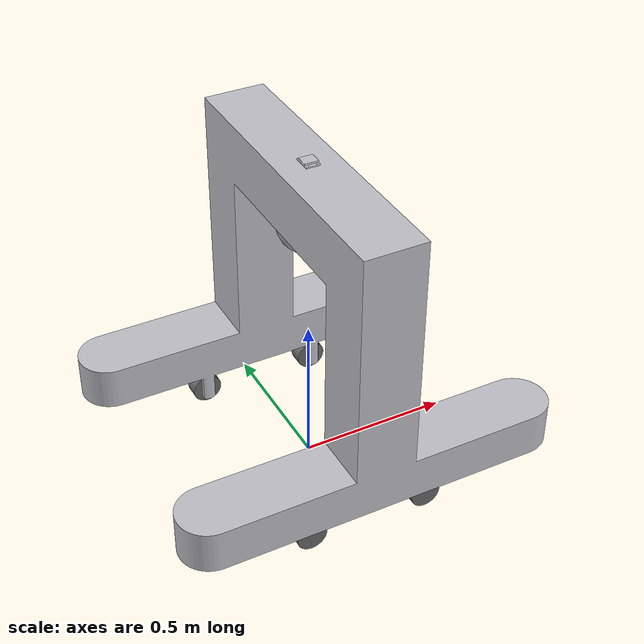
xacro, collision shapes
<?xml version="1.0" ?>
<robot name="robot" xmlns:xacro="http://www.ros.org/wiki/xacro">

<xacro:property name="PI" value="3.1415926535897931" />

<xacro:property name="wheel_radius" value="0.050" />
<xacro:property name="wheel_width" value="0.0505" />

<material name="light_grey"><color rgba="0.4 0.4 0.4 1.0" /></material>

<xacro:include filename="$(find robot_description)/urdf/materials.xacro" />
<xacro:include filename="$(find robot_description)/urdf/robot.trans" />
<xacro:include filename="$(find robot_description)/urdf/robot_mecanum.gazebo" />

<xacro:property name="base_collision_height" value="0.5403669088914017"/>
<xacro:property name="base_mass" value="12.4385441416157"/>
<xacro:property name="base_mass_ixx" value="9.007417"/>
<xacro:property name="base_mass_iyy" value="2.398532"/>
<xacro:property name="base_mass_izz" value="2.911004"/>

<link name="base_link">
  <visual>
    <origin xyz="0 0 0" rpy="0 0 0"/>
    <geometry>
      <mesh filename="package://robot_description/meshes/base_link.stl" scale="0.001 0.001 0.001"/>
    </geometry>
    <material name="silver"/>
  </visual>
  <collision>
    <origin xyz="0 0 0" rpy="0 0 0"/>
    <geometry>
      <mesh filename="package://robot_description/meshes/base_link.stl" scale="0.001 0.001 0.001"/>
    </geometry>
  </collision>
</link>

<joint name="inertial_joint" type="fixed">
  <parent link="base_link"/>
  <child link="main_mass"/>
  <origin xyz="0 0 0" rpy="0 0 0"/>
</joint>

<link name="main_mass" type="fixed">
  <inertial>
    <origin xyz="0 0 0" rpy="0 0 0"/>
    <mass value="${base_mass}"/>
    <inertia
      ixx="${base_mass_ixx}"  ixy="0.000000"  ixz="0.000000"
      iyy="${base_mass_iyy}"  iyz="0.000000"
      izz="${base_mass_izz}"/>
  </inertial>
</link>

<!-- 调用激光雷达 -->
<xacro:include filename="$(find robot_description)/urdf/VLP-16.urdf.xacro"/>
<xacro:VLP-16
  parent="base_link"
  name="velodyne"
  topic="/velodyne_points"
  hz="10"
  samples="880"
  min_range="0.5"
  max_range="130"
  gpu="true"
>
  <origin xyz="0.2 0.0 0.6" rpy="0 0 0" />

</xacro:VLP-16>
<!-- 加载驱动轮模型  -->
<joint name="back_right_wheel_joint" type="continuous">
  <origin xyz="-0.201052 -0.388969 0.064" rpy="0 0 0"/>
  <parent link="base_link"/>
  <child link="back_right_wheel"/>
  <axis xyz="0.0 1.0 0.0"/>
</joint>

<link name="back_right_wheel">
    <visual>
      <origin xyz="0 0 0" rpy="0 0 0" />
      <geometry>
        <mesh filename="package://robot_description/meshes/mecanum_wheel_left.stl" scale="0.001 0.001 0.001"/>
      </geometry>
      <material name="light_grey" />
    </visual>
    <collision>
      <origin xyz="0 0 0" rpy="${PI/2} 0 0"/>
      <geometry>
        <cylinder radius="${wheel_radius}" length="${wheel_width}"/>
      </geometry>
    </collision>
    <inertial>
      <origin xyz="0.0 0.0 0.0" rpy="0 0 0"/>
      <mass value="0.3844"/>
      <!-- Inertia based on cylinder -->
      <inertia
        ixx="0.000324824" ixy="0" ixz="0"
        iyy="0.000480000" iyz="0"
        izz="0.000324824"/>
    </inertial>
</link>

<joint name="back_left_wheel_joint" type="continuous">
  <origin xyz="-0.201052 0.391031 0.064" rpy="0 0 0"/>
  <parent link="base_link"/>
  <child link="back_left_wheel"/>
  <axis xyz="0.0 1.0 0.0"/>
</joint>

<link name="back_left_wheel">
    <visual>
      <origin xyz="0 0 0" rpy="0 0 0" />
      <geometry>
        <mesh filename="package://robot_description/meshes/mecanum_wheel_right.stl" scale="0.001 0.001 0.001"/>
      </geometry>
      <material name="light_grey" />
    </visual>
    <collision>
      <origin xyz="0 0 0" rpy="${PI/2} 0 0"/>
      <geometry>
        <cylinder radius="${wheel_radius}" length="${wheel_width}"/>
      </geometry>
    </collision>
    <inertial>
      <origin xyz="0.0 0.0 0.0" rpy="0 0 0"/>
      <mass value="0.3844"/>
      <!-- Inertia based on cylinder -->
      <inertia
        ixx="0.000324824" ixy="0" ixz="0"
        iyy="0.000480000" iyz="0"
        izz="0.000324824"/>
    </inertial>
</link>

<joint name="front_left_wheel_joint" type="continuous">
  <origin xyz="0.198948 0.391031 0.064" rpy="0 0 0"/>
  <parent link="base_link"/>
  <child link="front_left_wheel"/>
  <axis xyz="0.0 1.0 0.0"/>
</joint>

<link name="front_left_wheel">
    <visual>
      <origin xyz="0 0 0" rpy="0 0 0" />
      <geometry>
        <mesh filename="package://robot_description/meshes/mecanum_wheel_left.stl" scale="0.001 0.001 0.001"/>
      </geometry>
      <material name="light_grey" />
    </visual>
    <collision>
      <origin xyz="0 0 0" rpy="${PI/2} 0 0"/>
      <geometry>
        <cylinder radius="${wheel_radius}" length="${wheel_width}"/>
      </geometry>
    </collision>
    <inertial>
      <origin xyz="0.0 0.0 0.0" rpy="0 0 0"/>
      <mass value="0.3844"/>
      <!-- Inertia based on cylinder -->
      <inertia
        ixx="0.000324824" ixy="0" ixz="0"
        iyy="0.000480000" iyz="0"
        izz="0.000324824"/>
    </inertial>
</link>

<joint name="front_right_wheel_joint" type="continuous">
  <origin xyz="0.198948 -0.388969 0.064" rpy="0 0 0"/>
  <parent link="base_link"/>
  <child link="front_right_wheel"/>
  <axis xyz="0.0 1.0 0.0"/>
</joint>

<link name="front_right_wheel">
    <visual>
      <origin xyz="0 0 0" rpy="0 0 0" />
      <geometry>
        <mesh filename="package://robot_description/meshes/mecanum_wheel_right.stl" scale="0.001 0.001 0.001"/>
      </geometry>
      <material name="light_grey" />
    </visual>
    <collision>
      <origin xyz="0 0 0" rpy="${PI/2} 0 0"/>
      <geometry>
        <cylinder radius="${wheel_radius}" length="${wheel_width}"/>
      </geometry>
    </collision>
    <inertial>
      <origin xyz="0.0 0.0 0.0" rpy="0 0 0"/>
      <mass value="0.3844"/>
      <!-- Inertia based on cylinder -->
      <inertia
        ixx="0.000324824" ixy="0" ixz="0"
        iyy="0.000480000" iyz="0"
        izz="0.000324824"/>
    </inertial>
</link>

<!-- 添加imu连接 -->
<joint name="imu_fixed_joint" type="fixed">
  <origin xyz="0.0 0.0 0.923475" rpy="0 0 0"/>
  <parent link="base_link"/>
  <child link="imu_link"/>
</joint>

<link name="imu_link">
  <inertial>
    <origin xyz="-3.1964619419726226e-05 -3.009551236631383e-17 0.004668359474671813" rpy="0 0 0"/>
    <mass value="0.18887672743007808"/>
    <inertia ixx="4.3e-05" iyy="3.5e-05" izz="7.5e-05" ixy="0.0" iyz="0.0" ixz="0.0"/>
  </inertial>
  <visual>
    <origin xyz="-0.0 -0.0 -0.923475" rpy="0 0 0"/>
    <geometry>
      <mesh filename="package://robot_description/meshes/imu_link.stl" scale="0.001 0.001 0.001"/>
    </geometry>
    <material name="silver"/>
  </visual>
  <collision>
    <origin xyz="-0.0 -0.0 -0.923475" rpy="0 0 0"/>
    <geometry>
      <mesh filename="package://robot_description/meshes/imu_link.stl" scale="0.001 0.001 0.001"/>
    </geometry>
  </collision>
</link>

<link name="gps_link">
  <inertial>
    <mass value="0.1"/>
    <origin xyz="0 0 0" />
    <inertia ixx="0.01" iyy="0.01" izz="0.01" ixy="0.01" ixz="0.01" iyz="0.01"/>
  </inertial>
  <visual>
    <geometry>
      <sphere radius="0.01"/>
    </geometry>
    <material name="silver"/>
  </visual>
  <collision>
    <geometry>
      <sphere radius="0.1"/>
    </geometry>
  </collision>
  <sensor name="gps_sensor" type="gps">
    <update_rate>1.0</update_rate>
    <visualize>true</visualize>
    <gps>
      <position>0 0 0</position>
    </gps>
  </sensor>
</link>

<joint name="gps_link_joint" type="fixed">
  <parent link="base_link" />
  <child link="gps_link" />
  <origin xyz="0.0 0.0 0.9" rpy="0 0 0" />  <!-- 适当设置位置 -->
</joint>

</robot>

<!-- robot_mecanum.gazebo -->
<robot name="robot" xmlns:xacro="http://www.ros.org/wiki/xacro" >

<xacro:property name="body_color" value="Gazebo/Silver" />

<gazebo>

    <plugin name="nexus_ros_force_based_move" filename="libnexus_ros_force_based_move.so">
      <commandTopic>cmd_vel</commandTopic>
      <odometryTopic>odom</odometryTopic>
      <odometryFrame>odom</odometryFrame>
      <odometryRate>25.0</odometryRate>
      <robotBaseFrame>base_link</robotBaseFrame>
      <cmdVelTimeOut>0.25</cmdVelTimeOut>
      <publishOdometryTf>1</publishOdometryTf>
      <yaw_velocity_p_gain>1.0</yaw_velocity_p_gain>
      <x_velocity_p_gain>100.0</x_velocity_p_gain>
      <y_velocity_p_gain>100.0</y_velocity_p_gain>
      <max_x_velocity>0.6</max_x_velocity>
      <max_y_velocity>0.6</max_y_velocity>
      <max_yaw_velocity>0.5</max_yaw_velocity>
    </plugin>
</gazebo>

<gazebo reference="base_link">
  <material>${body_color}</material>
  <mu1>10</mu1>
  <mu2>10</mu2>
  <selfCollide>true</selfCollide>
  <gravity>true</gravity>
  <velocity_decay>
    <linear>0.01</linear>
    <angular>0.005</angular>
  </velocity_decay>
</gazebo>

<gazebo reference="back_right_wheel">
  <material>${body_color}</material>
  <mu1>0.0</mu1>
  <mu2>0.0</mu2>
  <selfCollide>true</selfCollide>
</gazebo>

<gazebo reference="back_left_wheel">
  <material>${body_color}</material>
  <mu1>0.0</mu1>
  <mu2>0.0</mu2>
  <selfCollide>true</selfCollide>
</gazebo>

<gazebo reference="front_left_wheel">
  <material>${body_color}</material>
  <mu1>0.0</mu1>
  <mu2>0.0</mu2>
  <selfCollide>true</selfCollide>
</gazebo>

<gazebo reference="front_right_wheel">
  <material>${body_color}</material>
  <mu1>0.0</mu1>
  <mu2>0.0</mu2>
  <selfCollide>true</selfCollide>
</gazebo>

<gazebo reference="imu_link">
  <sensor name="imu_sensor" type="imu">
    <always_on>true</always_on>
    <update_rate>200</update_rate>  <!-- 数据更新频率（Hz） -->
    <visualize>true</visualize>     <!-- 在 Gazebo 中显示 IMU -->
    <imu>
      <noise>
        <!-- 加速度计噪声模型 -->
        <type>gaussian</type>
        <rate>
          <mean>0.0</mean>
          <stddev>0.001</stddev>  <!-- 标准偏差 -->
        </rate>
        <accel>
          <mean>0.0</mean>
          <stddev>0.01</stddev>
        </accel>
      </noise>
    </imu>
    <plugin name="imu_plugin" filename="libgazebo_ros_imu_sensor.so">
      <topicName>/imu/data</topicName>       <!-- 发布的 ROS 话题 -->
      <bodyName>imu_link</bodyName>          <!-- IMU 的链接名称 -->
      <updateRateHZ>100</updateRateHZ>       <!-- 与传感器更新率一致 -->
      <gaussianNoise>0.001</gaussianNoise>   <!-- 高斯噪声 -->
      <frameName>imu_link</frameName>         <!-- 坐标系名称 -->
      <xyzOffset>0 0 0</xyzOffset>  <!-- x,y,z方向偏移 -->
      <rpyOffset>0 0 0</rpyOffset>
    </plugin>
  </sensor>
  <material>${body_color}</material>
  <mu1>0.2</mu1>
  <mu2>0.2</mu2>
  <selfCollide>true</selfCollide>
</gazebo>

<gazebo>
  <plugin name="gps_controller" filename="libhector_gazebo_ros_gps.so">
    <updateRate>40</updateRate>
    <bodyName>gps_link</bodyName>
    <frameId>base_link</frameId>
    <topicName>navsat/fix</topicName>
    <velocityTopicName>navsat/vel</velocityTopicName>
    <referenceLatitude>$(optenv GAZEBO_WORLD_LAT 49.9)</referenceLatitude>
    <referenceLongitude>$(optenv GAZEBO_WORLD_LON 8.9)</referenceLongitude>
    <referenceHeading>90</referenceHeading>
    <referenceAltitude>0</referenceAltitude>
    <drift>0.0000001 0.000001 0.000001</drift>
  </plugin>
</gazebo>

</robot>

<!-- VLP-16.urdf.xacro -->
<robot xmlns:xacro="http://www.ros.org/wiki/xacro" name="VLP-16">
  <xacro:property name="M_PI" value="3.1415926535897931" />
  <xacro:macro name="VLP-16" params="*origin parent:=base_link name:=velodyne topic:=/velodyne_points hz:=10 lasers:=16 samples:=1875 collision_range:=0.3 min_range:=0.9 max_range:=130.0 noise:=0.008 min_angle:=-${M_PI} max_angle:=${M_PI} gpu:=false">

    <joint name="${name}_base_mount_joint" type="fixed">
      <xacro:insert_block name="origin" />
      <parent link="${parent}"/>
      <child link="${name}_base_link"/>
    </joint>

    <link name="${name}_base_link">
      <inertial>
        <mass value="0.83"/>
        <origin xyz="0 0 0.03585"/>
        <inertia ixx="${(0.83 * (3.0*0.0516*0.0516 + 0.0717*0.0717)) / 12.0}" ixy="0" ixz="0"
          iyy="${(0.83 * (3.0*0.0516*0.0516 + 0.0717*0.0717)) / 12.0}" iyz="0"
          izz="${0.5 * 0.83 * (0.0516*0.0516)}"/>
      </inertial>
      <visual>
        <geometry>
          <mesh filename="package://robot_description/meshes/VLP16/VLP16_base_1.dae" />
        </geometry>
      </visual>
      <visual>
        <geometry>
          <mesh filename="package://robot_description/meshes/VLP16/VLP16_base_2.dae" />
        </geometry>
      </visual>
      <collision>
        <origin rpy="0 0 0" xyz="0 0 0.03585"/>
        <geometry>
          <cylinder radius="0.0516" length="0.0717"/>
        </geometry>
      </collision>
    </link>

    <joint name="${name}_base_scan_joint" type="fixed" >
      <origin xyz="0 0 0.0377" rpy="0 0 0" />
      <parent link="${name}_base_link" />
      <child link="${name}"/>
    </joint>

    <link name="${name}">
      <inertial>
        <mass value="0.01"/>
        <origin xyz="0 0 0"/>
        <inertia ixx="1e-7" ixy="0" ixz="0" iyy="1e-7" iyz="0" izz="1e-7"/>
      </inertial>
      <visual>
        <origin xyz="0 0 -0.0377" />
        <geometry>
          <mesh filename="package://robot_description/meshes/VLP16/VLP16_scan.dae" />
        </geometry>
      </visual>
    </link>

    <!-- Gazebo requires the velodyne_gazebo_plugins package -->
    <gazebo reference="${name}">
      <xacro:if value="${gpu}">
        <sensor type="gpu_ray" name="${name}-VLP16">
          <pose>0 0 0 0 0 0</pose>
          <visualize>false</visualize>
          <update_rate>${hz}</update_rate>
          <ray>
            <scan>
              <horizontal>
                <samples>${samples}</samples>
                <resolution>1</resolution>
                <min_angle>${min_angle}</min_angle>
                <max_angle>${max_angle}</max_angle>
              </horizontal>
              <vertical>
                <samples>${lasers}</samples>
                <resolution>1</resolution>
                <min_angle>-${15.0*M_PI/180.0}</min_angle>
                <max_angle> ${15.0*M_PI/180.0}</max_angle>
              </vertical>
            </scan>
            <range>
              <min>${collision_range}</min>
              <max>${max_range+1}</max>
              <resolution>0.001</resolution>
            </range>
            <noise>
              <type>gaussian</type>
              <mean>0.0</mean>
              <stddev>0.0</stddev>
            </noise>
          </ray>
          <plugin name="gazebo_ros_laser_controller" filename="libgazebo_ros_velodyne_gpu_laser.so">
            <topicName>${topic}</topicName>
            <frameName>${name}</frameName>
            <min_range>${min_range}</min_range>
            <max_range>${max_range}</max_range>
            <gaussianNoise>${noise}</gaussianNoise>
          </plugin>
        </sensor>
      </xacro:if>
      <xacro:unless value="${gpu}">
        <sensor type="ray" name="${name}-VLP16">
          <pose>0 0 0 0 0 0</pose>
          <visualize>false</visualize>
          <update_rate>${hz}</update_rate>
          <ray>
            <scan>
              <horizontal>
                <samples>${samples}</samples>
                <resolution>1</resolution>
                <min_angle>${min_angle}</min_angle>
                <max_angle>${max_angle}</max_angle>
              </horizontal>
              <vertical>
                <samples>${lasers}</samples>
                <resolution>1</resolution>
                <min_angle>-${15.0*M_PI/180.0}</min_angle>
                <max_angle> ${15.0*M_PI/180.0}</max_angle>
              </vertical>
            </scan>
            <range>
              <min>${collision_range}</min>
              <max>${max_range+1}</max>
              <resolution>0.001</resolution>
            </range>
            <noise>
              <type>gaussian</type>
              <mean>0.0</mean>
              <stddev>0.0</stddev>
            </noise>
          </ray>
          <plugin name="gazebo_ros_laser_controller" filename="libgazebo_ros_velodyne_laser.so">
            <topicName>${topic}</topicName>
            <frameName>${name}</frameName>
            <min_range>${min_range}</min_range>
            <max_range>${max_range}</max_range>
            <gaussianNoise>${noise}</gaussianNoise>
          </plugin>
        </sensor>
      </xacro:unless>
    </gazebo>

  </xacro:macro>
</robot>
